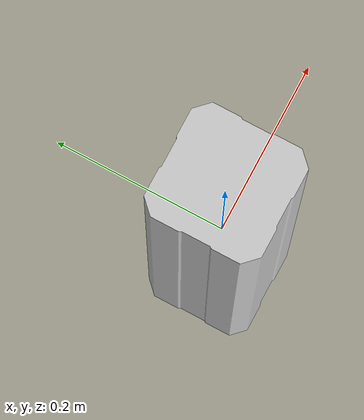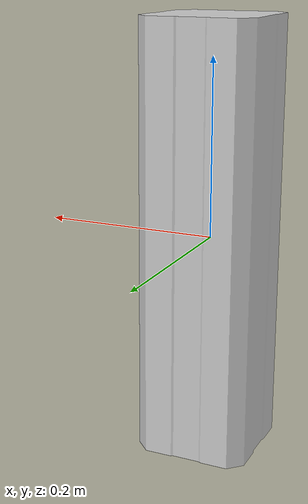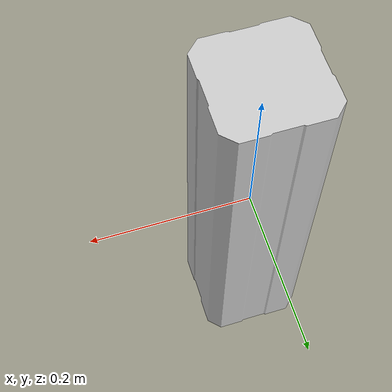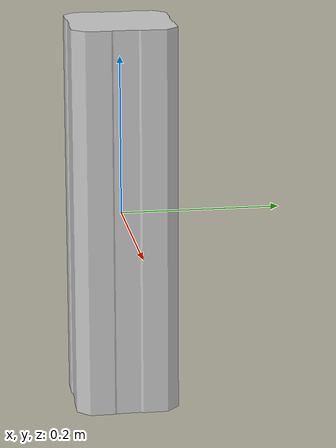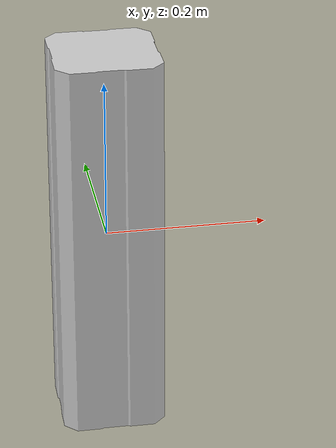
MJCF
<mujoco model="lift_high_700mm">
  <default>
    <default class="visual">
      <geom group="2" type="mesh" contype="0" conaffinity="0"/>
    </default>
    <default class="collision">
      <geom group="3" type="mesh"/>
    </default>
  </default>
  <asset>
    <material name="material_lift_high_700mm_0" specular="0.20000000000000004" shininess="1.0" rgba="0.80000000 0.80000000 0.80000000 1.0"/>
    <mesh file="lift_high_700mm.obj"/>
  </asset>
  <worldbody>
    <body name="lift_high_700mm">
      <geom material="material_lift_high_700mm_0" mesh="lift_high_700mm" class="visual"/>
      <geom mesh="lift_high_700mm" class="collision"/>
    </body>
  </worldbody>
</mujoco>
